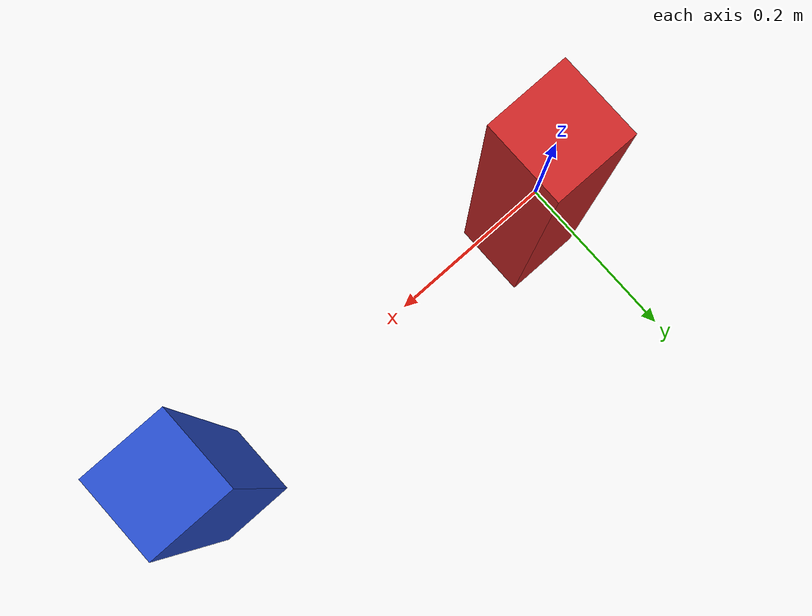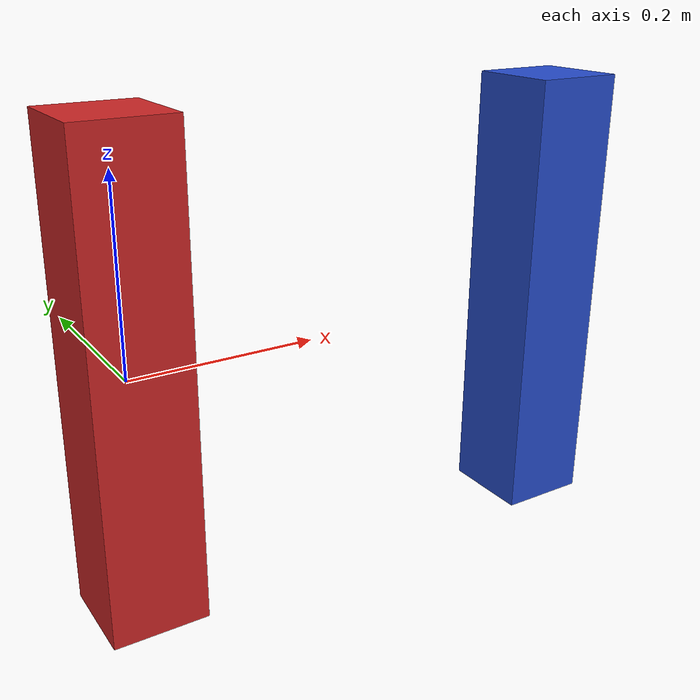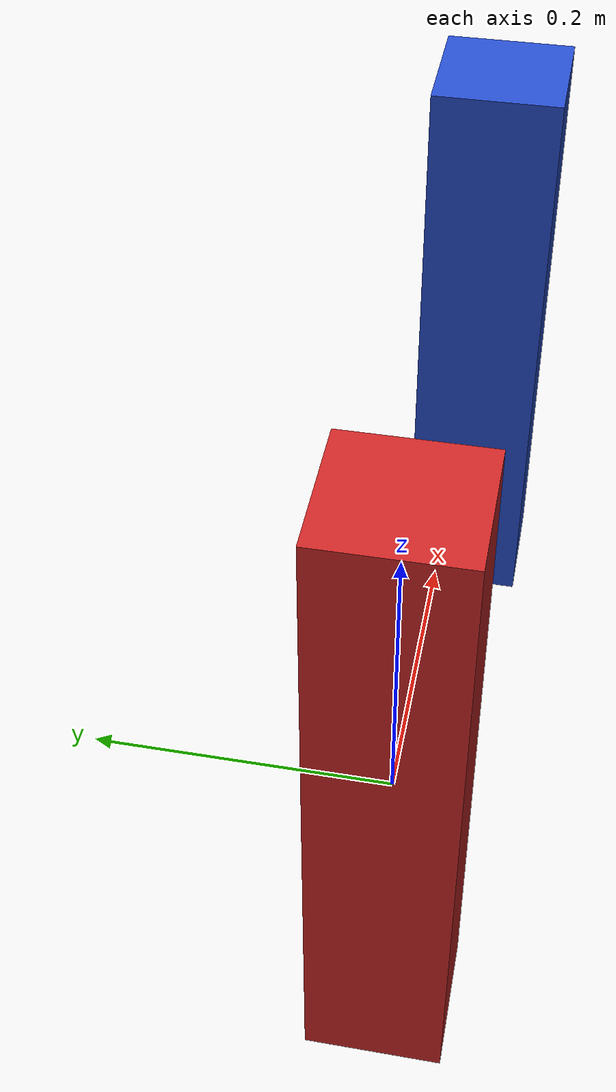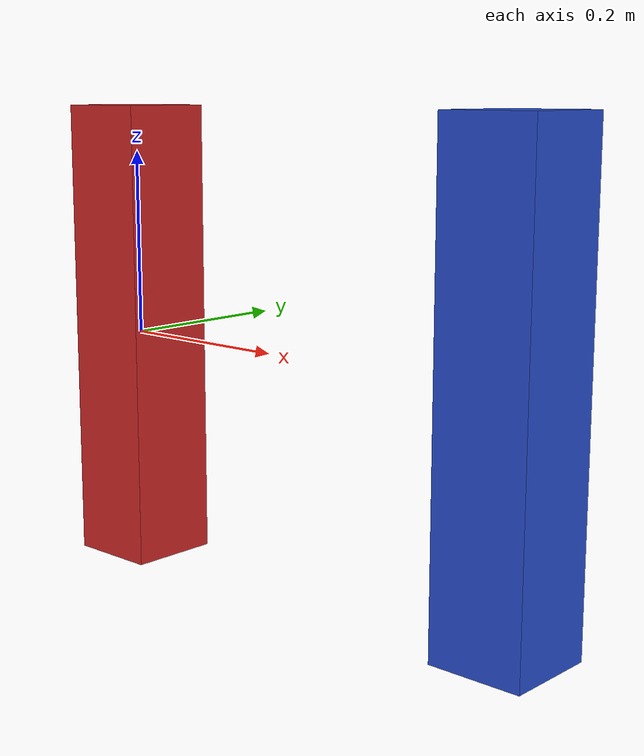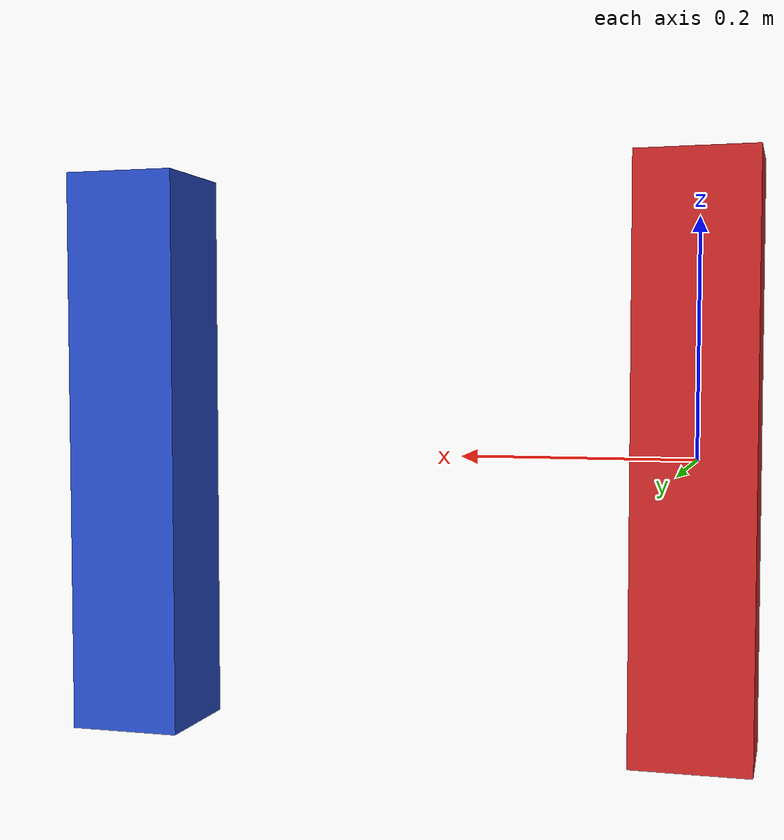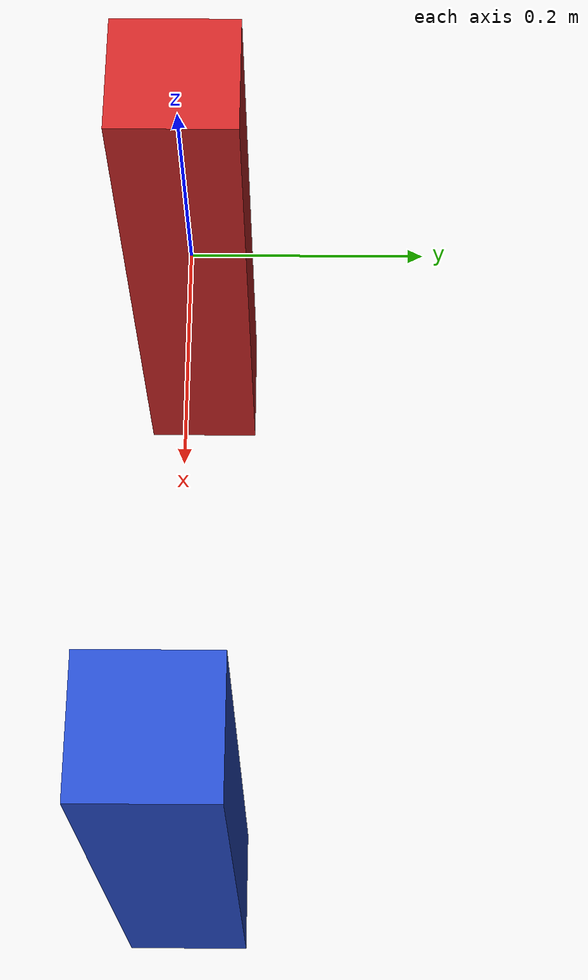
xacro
<?xml version="1.0"?>
<robot xmlns:xacro="http://www.ros.org/wiki/xacro" name="example_robot">

  <xacro:arg name="arg1_input" default="arg1_default" />
  <xacro:arg name="arg2_input" default="arg2_default" />

  <xacro:macro name="robot_macro" params="link1_name link2_name">
    <link name="${link1_name}">
      <visual>
        <geometry>
          <box size="0.1 0.1 0.5" />
        </geometry>
        <origin xyz="0 0 0" />
        <material name="red" />
      </visual>
      <collision>
        <geometry>
          <box size="0.1 0.1 0.5" />
        </geometry>
        <origin xyz="0 0 0" />
      </collision>
    </link>

    <link name="${link2_name}">
      <visual>
        <geometry>
          <box size="0.1 0.1 0.5" />
        </geometry>
        <origin xyz="0.5 0 0" />
        <material name="blue" />
      </visual>
      <collision>
        <geometry>
          <box size="0.1 0.1 0.5" />
        </geometry>
        <origin xyz="0.5 0 0" />
      </collision>
    </link>

    <joint name="joint1" type="revolute">
      <origin xyz="0 0 0" />
      <parent link="${link1_name}" />
      <child link="${link2_name}" />
      <axis xyz="0 0 1" />
      <limit lower="-3.14" upper="3.14" effort="10" velocity="1" />
    </joint>
  </xacro:macro>

  <!-- xacro robot_macro.urdf.xacro arg1_input:=john arg2_input:=cena -->
  <xacro:robot_macro link1_name="$(arg arg1_input)" link2_name="$(arg arg2_input)">
  </xacro:robot_macro>

</robot>
